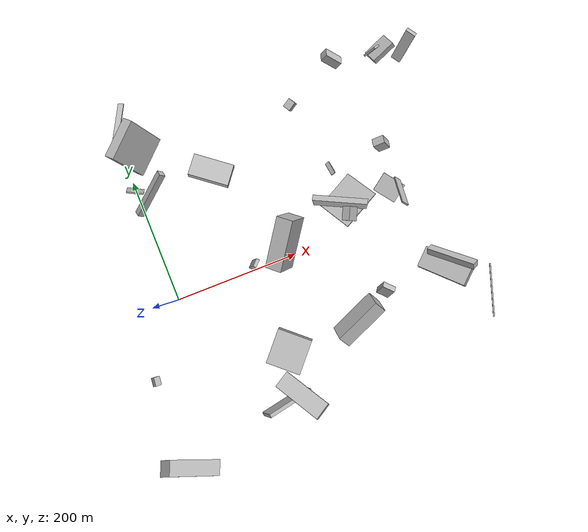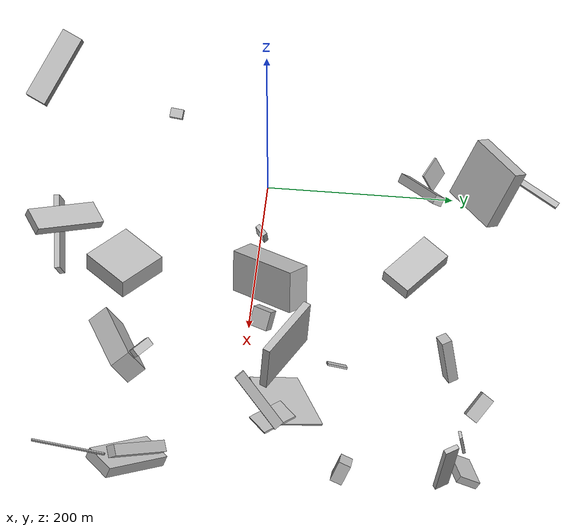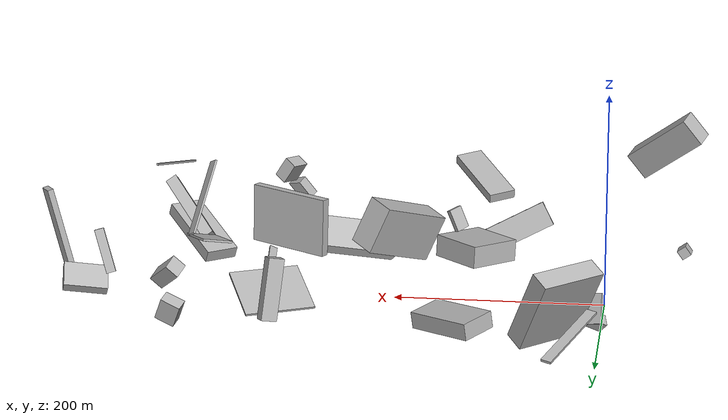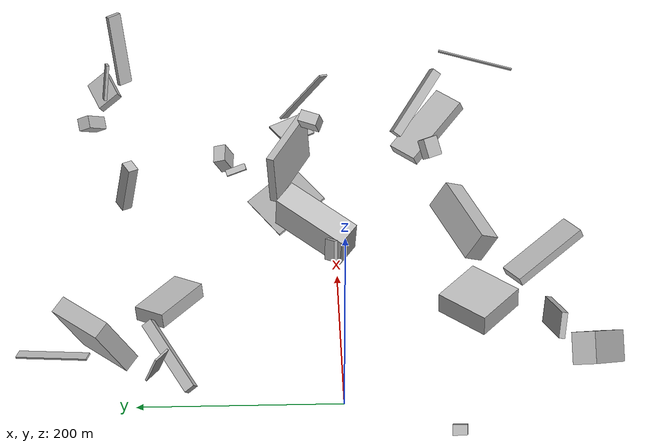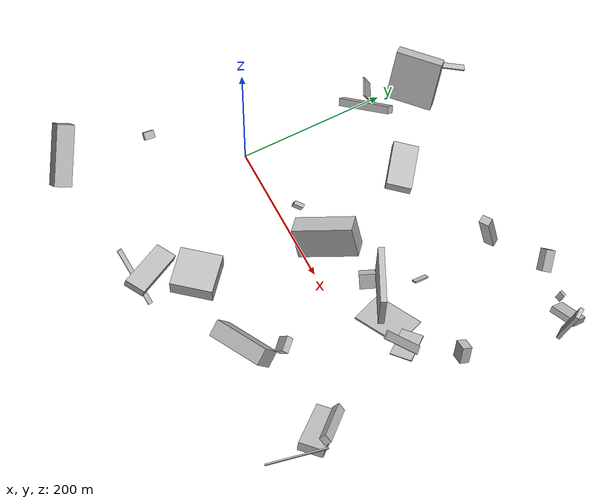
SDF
<sdf version="1.6">
 <world name="default">
  <scene>
   <sky><clouds><speed>12</speed></clouds></sky>
   <ambient>0.4 0.4 0.4 1</ambient>
   <background>0.7 0.7 0.7 1</background>
   <shadows>1</shadows>
  </scene>
  <gravity>0 0 -9.8066</gravity>
  <magnetic_field>6e-06 2.3e-05 -4.2e-05</magnetic_field>
  <physics default="0" name="default_physics" type="ode">
   <ode>
    <solver>
     <type>quick</type>
     <iters>10</iters>
     <sor>1.0</sor>
     <use_dynamic_moi_rescaling>0</use_dynamic_moi_rescaling>
    </solver>
    <constraints>
     <cfm>0</cfm>
     <erp>0.2</erp>
     <contact_max_correcting_vel>100</contact_max_correcting_vel>
     <contact_surface_layer>0.001</contact_surface_layer>
    </constraints>
   </ode>
   <max_step_size>0.004</max_step_size>
   <real_time_factor>1</real_time_factor>
   <real_time_update_rate>250</real_time_update_rate>
  </physics>
  <light name="sun" type="directional">
   <pose>0 0 10 0 0 0</pose>
   <diffuse>0.8 0.8 0.8 1</diffuse>
   <specular>0.2 0.2 0.2 1</specular>
   <attenuation>
    <range>1000</range>
    <constant>0.9</constant>
    <linear>0.01</linear>
    <quadratic>0.001</quadratic>
   </attenuation>
   <direction>-0.5 0.1 -0.9</direction>
  </light>
  <model name="building_1">
   <static>0</static>
   <pose>135.55247538067633 182.16266218073974 27.23504736665194 -1.413875425937808 -0.030752626919098792 2.4911080885580867</pose>
   <link name="link">
    <gravity>0</gravity>
    <pose>0 0 17.0 0 0 0</pose>
    <collision name="collision"><geometry><box><size>64 15 34</size></box></geometry></collision>
    <visual name="visual">
     <cast_shadows>0</cast_shadows>
     <geometry><box><size>64 15 34</size></box></geometry>
     <material>
      <script>
       <uri>model://HANNAS_wall/materials/scripts</uri>
       <uri>model://HANNAS_wall/materials/textures</uri>
       <name>vrc/HANNAS_wall</name>
      </script>
     </material>
    </visual>
   </link>
  </model>
  <model name="building_2">
   <static>0</static>
   <pose>417.3206782298035 234.34963884759352 116.57885181795316 2.8890911112400883 0.15504624671511846 -1.3571418871396956</pose>
   <link name="link">
    <gravity>0</gravity>
    <pose>0 0 19.0 0 0 0</pose>
    <collision name="collision"><geometry><box><size>3 8 38</size></box></geometry></collision>
    <visual name="visual">
     <cast_shadows>0</cast_shadows>
     <geometry><box><size>3 8 38</size></box></geometry>
     <material>
      <script>
       <uri>model://HANNAS_wall/materials/scripts</uri>
       <uri>model://HANNAS_wall/materials/textures</uri>
       <name>vrc/HANNAS_wall</name>
      </script>
     </material>
    </visual>
   </link>
  </model>
  <model name="building_3">
   <static>0</static>
   <pose>399.1952571956361 -113.93930115027189 34.31838242623493 1.5807053446503765 -1.1029079761141294 2.327450896427146</pose>
   <link name="link">
    <gravity>0</gravity>
    <pose>0 0 17.0 0 0 0</pose>
    <collision name="collision"><geometry><box><size>12 80 34</size></box></geometry></collision>
    <visual name="visual">
     <cast_shadows>0</cast_shadows>
     <geometry><box><size>12 80 34</size></box></geometry>
     <material>
      <script>
       <uri>model://HANNAS_wall/materials/scripts</uri>
       <uri>model://HANNAS_wall/materials/textures</uri>
       <name>vrc/HANNAS_wall</name>
      </script>
     </material>
    </visual>
   </link>
  </model>
  <model name="building_4">
   <static>0</static>
   <pose>426.76839377210604 248.62821899894772 67.37922423098325 -0.9230034485197152 0.1584683226634219 -2.773578711807585</pose>
   <link name="link">
    <gravity>0</gravity>
    <pose>0 0 12.5 0 0 0</pose>
    <collision name="collision"><geometry><box><size>37 8 25</size></box></geometry></collision>
    <visual name="visual">
     <cast_shadows>0</cast_shadows>
     <geometry><box><size>37 8 25</size></box></geometry>
     <material>
      <script>
       <uri>model://HANNAS_wall/materials/scripts</uri>
       <uri>model://HANNAS_wall/materials/textures</uri>
       <name>vrc/HANNAS_wall</name>
      </script>
     </material>
    </visual>
   </link>
  </model>
  <model name="building_5">
   <static>0</static>
   <pose>26.85449785430404 162.99058706665744 45.58177077717061 -2.2914903298017815 -0.4457724135303086 0.6039635811657154</pose>
   <link name="link">
    <gravity>0</gravity>
    <pose>0 0 5.5 0 0 0</pose>
    <collision name="collision"><geometry><box><size>80 10 11</size></box></geometry></collision>
    <visual name="visual">
     <cast_shadows>0</cast_shadows>
     <geometry><box><size>80 10 11</size></box></geometry>
     <material>
      <script>
       <uri>model://HANNAS_wall/materials/scripts</uri>
       <uri>model://HANNAS_wall/materials/textures</uri>
       <name>vrc/HANNAS_wall</name>
      </script>
     </material>
    </visual>
   </link>
  </model>
  <model name="building_6">
   <static>0</static>
   <pose>308.72631696116383 50.11380828823086 17.385270371771917 -3.128426295153972 0.4601942969114386 2.0728154377085497</pose>
   <link name="link">
    <gravity>0</gravity>
    <pose>0 0 1.0 0 0 0</pose>
    <collision name="collision"><geometry><box><size>60 67 2</size></box></geometry></collision>
    <visual name="visual">
     <cast_shadows>0</cast_shadows>
     <geometry><box><size>60 67 2</size></box></geometry>
     <material>
      <script>
       <uri>model://HANNAS_wall/materials/scripts</uri>
       <uri>model://HANNAS_wall/materials/textures</uri>
       <name>vrc/HANNAS_wall</name>
      </script>
     </material>
    </visual>
   </link>
  </model>
  <model name="building_7">
   <static>0</static>
   <pose>42.66921646292065 224.39131230139478 36.84642269330446 -0.5313138820085859 0.042426259865302116 0.7641315012576924</pose>
   <link name="link">
    <gravity>0</gravity>
    <pose>0 0 34.5 0 0 0</pose>
    <collision name="collision"><geometry><box><size>62 18 69</size></box></geometry></collision>
    <visual name="visual">
     <cast_shadows>0</cast_shadows>
     <geometry><box><size>62 18 69</size></box></geometry>
     <material>
      <script>
       <uri>model://HANNAS_wall/materials/scripts</uri>
       <uri>model://HANNAS_wall/materials/textures</uri>
       <name>vrc/HANNAS_wall</name>
      </script>
     </material>
    </visual>
   </link>
  </model>
  <model name="building_8">
   <static>0</static>
   <pose>288.7024128459424 43.83655007321169 85.03273438157635 1.6111679536185683 0.06809447400864882 2.6886353182573552</pose>
   <link name="link">
    <gravity>0</gravity>
    <pose>0 0 4.0 0 0 0</pose>
    <collision name="collision"><geometry><box><size>80 54 8</size></box></geometry></collision>
    <visual name="visual">
     <cast_shadows>0</cast_shadows>
     <geometry><box><size>80 54 8</size></box></geometry>
     <material>
      <script>
       <uri>model://HANNAS_wall/materials/scripts</uri>
       <uri>model://HANNAS_wall/materials/textures</uri>
       <name>vrc/HANNAS_wall</name>
      </script>
     </material>
    </visual>
   </link>
  </model>
  <model name="building_9">
   <static>0</static>
   <pose>154.6845627405021 -231.59892616340832 91.56362553070105 2.813042510878653 1.1945552876870789 -1.3339794849380693</pose>
   <link name="link">
    <gravity>0</gravity>
    <pose>0 0 40.0 0 0 0</pose>
    <collision name="collision"><geometry><box><size>9 28 80</size></box></geometry></collision>
    <visual name="visual">
     <cast_shadows>0</cast_shadows>
     <geometry><box><size>9 28 80</size></box></geometry>
     <material>
      <script>
       <uri>model://HANNAS_wall/materials/scripts</uri>
       <uri>model://HANNAS_wall/materials/textures</uri>
       <name>vrc/HANNAS_wall</name>
      </script>
     </material>
    </visual>
   </link>
  </model>
  <model name="building_10">
   <static>0</static>
   <pose>288.00641066064594 26.808873216240457 135.9140241318054 2.52089249563116 -0.055230716604395345 1.1378828997385628</pose>
   <link name="link">
    <gravity>0</gravity>
    <pose>0 0 10.0 0 0 0</pose>
    <collision name="collision"><geometry><box><size>20 12 20</size></box></geometry></collision>
    <visual name="visual">
     <cast_shadows>0</cast_shadows>
     <geometry><box><size>20 12 20</size></box></geometry>
     <material>
      <script>
       <uri>model://HANNAS_wall/materials/scripts</uri>
       <uri>model://HANNAS_wall/materials/textures</uri>
       <name>vrc/HANNAS_wall</name>
      </script>
     </material>
    </visual>
   </link>
  </model>
  <model name="building_11">
   <static>0</static>
   <pose>157.6385129019549 -157.0195034113113 17.892859966479662 1.6210511301964687 0.024000594081327247 -2.2850942136860337</pose>
   <link name="link">
    <gravity>0</gravity>
    <pose>0 0 28.0 0 0 0</pose>
    <collision name="collision"><geometry><box><size>57 22 56</size></box></geometry></collision>
    <visual name="visual">
     <cast_shadows>0</cast_shadows>
     <geometry><box><size>57 22 56</size></box></geometry>
     <material>
      <script>
       <uri>model://HANNAS_wall/materials/scripts</uri>
       <uri>model://HANNAS_wall/materials/textures</uri>
       <name>vrc/HANNAS_wall</name>
      </script>
     </material>
    </visual>
   </link>
  </model>
  <model name="building_12">
   <static>0</static>
   <pose>1.3449657699956852 243.74861411311807 63.387048545361694 -1.858335757518116 -0.13042406716599067 -0.3980105532209978</pose>
   <link name="link">
    <gravity>0</gravity>
    <pose>0 0 40.0 0 0 0</pose>
    <collision name="collision"><geometry><box><size>9 2 80</size></box></geometry></collision>
    <visual name="visual">
     <cast_shadows>0</cast_shadows>
     <geometry><box><size>9 2 80</size></box></geometry>
     <material>
      <script>
       <uri>model://HANNAS_wall/materials/scripts</uri>
       <uri>model://HANNAS_wall/materials/textures</uri>
       <name>vrc/HANNAS_wall</name>
      </script>
     </material>
    </visual>
   </link>
  </model>
  <model name="building_13">
   <static>0</static>
   <pose>312.1635624657544 -95.68794033385063 90.63170984767169 -2.527066697679238 -0.21627775790911977 2.331075172824988</pose>
   <link name="link">
    <gravity>0</gravity>
    <pose>0 0 10.0 0 0 0</pose>
    <collision name="collision"><geometry><box><size>20 9 20</size></box></geometry></collision>
    <visual name="visual">
     <cast_shadows>0</cast_shadows>
     <geometry><box><size>20 9 20</size></box></geometry>
     <material>
      <script>
       <uri>model://HANNAS_wall/materials/scripts</uri>
       <uri>model://HANNAS_wall/materials/textures</uri>
       <name>vrc/HANNAS_wall</name>
      </script>
     </material>
    </visual>
   </link>
  </model>
  <model name="building_14">
   <static>0</static>
   <pose>170.15640112204665 -9.756083333319609 62.27129466451985 0.8630650407533662 -1.146740537805933 -3.0845143101985304</pose>
   <link name="link">
    <gravity>0</gravity>
    <pose>0 0 40.0 0 0 0</pose>
    <collision name="collision"><geometry><box><size>45 26 80</size></box></geometry></collision>
    <visual name="visual">
     <cast_shadows>0</cast_shadows>
     <geometry><box><size>45 26 80</size></box></geometry>
     <material>
      <script>
       <uri>model://HANNAS_wall/materials/scripts</uri>
       <uri>model://HANNAS_wall/materials/textures</uri>
       <name>vrc/HANNAS_wall</name>
      </script>
     </material>
    </visual>
   </link>
  </model>
  <model name="building_15">
   <static>0</static>
   <pose>384.314211569365 50.17922750182272 68.42260044820536 -0.3908628426417075 0.4806698929980192 -2.6002237472903333</pose>
   <link name="link">
    <gravity>0</gravity>
    <pose>0 0 37.5 0 0 0</pose>
    <collision name="collision"><geometry><box><size>2 11 75</size></box></geometry></collision>
    <visual name="visual">
     <cast_shadows>0</cast_shadows>
     <geometry><box><size>2 11 75</size></box></geometry>
     <material>
      <script>
       <uri>model://HANNAS_wall/materials/scripts</uri>
       <uri>model://HANNAS_wall/materials/textures</uri>
       <name>vrc/HANNAS_wall</name>
      </script>
     </material>
    </visual>
   </link>
  </model>
  <model name="building_16">
   <static>0</static>
   <pose>363.65918735476873 241.69775336543023 78.10843031473476 -0.780806525388757 -0.7547505199380906 0.24520032532634092</pose>
   <link name="link">
    <gravity>0</gravity>
    <pose>0 0 14.0 0 0 0</pose>
    <collision name="collision"><geometry><box><size>13 14 28</size></box></geometry></collision>
    <visual name="visual">
     <cast_shadows>0</cast_shadows>
     <geometry><box><size>13 14 28</size></box></geometry>
     <material>
      <script>
       <uri>model://HANNAS_wall/materials/scripts</uri>
       <uri>model://HANNAS_wall/materials/textures</uri>
       <name>vrc/HANNAS_wall</name>
      </script>
     </material>
    </visual>
   </link>
  </model>
  <model name="building_17">
   <static>0</static>
   <pose>134.01087506471475 3.8051554232369598 82.8823482256011 -1.85064398407122 0.2767448323481257 -0.8686650238857554</pose>
   <link name="link">
    <gravity>0</gravity>
    <pose>0 0 6.5 0 0 0</pose>
    <collision name="collision"><geometry><box><size>5 21 13</size></box></geometry></collision>
    <visual name="visual">
     <cast_shadows>0</cast_shadows>
     <geometry><box><size>5 21 13</size></box></geometry>
     <material>
      <script>
       <uri>model://HANNAS_wall/materials/scripts</uri>
       <uri>model://HANNAS_wall/materials/textures</uri>
       <name>vrc/HANNAS_wall</name>
      </script>
     </material>
    </visual>
   </link>
  </model>
  <model name="building_18">
   <static>0</static>
   <pose>396.79454069689126 -67.87329952220887 36.5673489629978 0.7528109109656872 -0.6476797109083716 1.3947549151534533</pose>
   <link name="link">
    <gravity>0</gravity>
    <pose>0 0 40.0 0 0 0</pose>
    <collision name="collision"><geometry><box><size>10 12 80</size></box></geometry></collision>
    <visual name="visual">
     <cast_shadows>0</cast_shadows>
     <geometry><box><size>10 12 80</size></box></geometry>
     <material>
      <script>
       <uri>model://HANNAS_wall/materials/scripts</uri>
       <uri>model://HANNAS_wall/materials/textures</uri>
       <name>vrc/HANNAS_wall</name>
      </script>
     </material>
    </visual>
   </link>
  </model>
  <model name="building_19">
   <static>0</static>
   <pose>398.94012766867377 114.05271865799563 17.151544951412433 -2.030795836296216 0.3325613309600462 1.3705029154673538</pose>
   <link name="link">
    <gravity>0</gravity>
    <pose>0 0 9.5 0 0 0</pose>
    <collision name="collision"><geometry><box><size>13 23 19</size></box></geometry></collision>
    <visual name="visual">
     <cast_shadows>0</cast_shadows>
     <geometry><box><size>13 23 19</size></box></geometry>
     <material>
      <script>
       <uri>model://HANNAS_wall/materials/scripts</uri>
       <uri>model://HANNAS_wall/materials/textures</uri>
       <name>vrc/HANNAS_wall</name>
      </script>
     </material>
    </visual>
   </link>
  </model>
  <model name="building_20">
   <static>0</static>
   <pose>-24.652325364197218 -251.63224924206804 86.28053653534965 0.950015640069157 -0.29649874399898396 -1.9119327256664636</pose>
   <link name="link">
    <gravity>0</gravity>
    <pose>0 0 40.0 0 0 0</pose>
    <collision name="collision"><geometry><box><size>23 30 80</size></box></geometry></collision>
    <visual name="visual">
     <cast_shadows>0</cast_shadows>
     <geometry><box><size>23 30 80</size></box></geometry>
     <material>
      <script>
       <uri>model://HANNAS_wall/materials/scripts</uri>
       <uri>model://HANNAS_wall/materials/textures</uri>
       <name>vrc/HANNAS_wall</name>
      </script>
     </material>
    </visual>
   </link>
  </model>
  <model name="building_21">
   <static>0</static>
   <pose>257.68895966012644 -139.7391946056655 38.26890573822976 2.930946415862315 -0.5107922972938801 2.103070397754366</pose>
   <link name="link">
    <gravity>0</gravity>
    <pose>0 0 16.0 0 0 0</pose>
    <collision name="collision"><geometry><box><size>23 80 32</size></box></geometry></collision>
    <visual name="visual">
     <cast_shadows>0</cast_shadows>
     <geometry><box><size>23 80 32</size></box></geometry>
     <material>
      <script>
       <uri>model://HANNAS_wall/materials/scripts</uri>
       <uri>model://HANNAS_wall/materials/textures</uri>
       <name>vrc/HANNAS_wall</name>
      </script>
     </material>
    </visual>
   </link>
  </model>
  <model name="building_22">
   <static>0</static>
   <pose>280.98172151423387 216.05771422112855 64.84492854325057 -2.7343125601415847 1.3760380859132855 0.9503038612609904</pose>
   <link name="link">
    <gravity>0</gravity>
    <pose>0 0 7.0 0 0 0</pose>
    <collision name="collision"><geometry><box><size>54 11 14</size></box></geometry></collision>
    <visual name="visual">
     <cast_shadows>0</cast_shadows>
     <geometry><box><size>54 11 14</size></box></geometry>
     <material>
      <script>
       <uri>model://HANNAS_wall/materials/scripts</uri>
       <uri>model://HANNAS_wall/materials/textures</uri>
       <name>vrc/HANNAS_wall</name>
      </script>
     </material>
    </visual>
   </link>
  </model>
  <model name="building_23">
   <static>0</static>
   <pose>7.389277779478874 179.8863967915325 47.28909457694653 2.590379158958003 -1.1795615056872062 -1.513703003261696</pose>
   <link name="link">
    <gravity>0</gravity>
    <pose>0 0 1.0 0 0 0</pose>
    <collision name="collision"><geometry><box><size>26 26 2</size></box></geometry></collision>
    <visual name="visual">
     <cast_shadows>0</cast_shadows>
     <geometry><box><size>26 26 2</size></box></geometry>
     <material>
      <script>
       <uri>model://HANNAS_wall/materials/scripts</uri>
       <uri>model://HANNAS_wall/materials/textures</uri>
       <name>vrc/HANNAS_wall</name>
      </script>
     </material>
    </visual>
   </link>
  </model>
  <model name="building_24">
   <static>0</static>
   <pose>460.81817402682975 -116.1285683885607 98.18553839514891 -2.3638571177475964 -1.3710385803846266 -2.6153816834220973</pose>
   <link name="link">
    <gravity>0</gravity>
    <pose>0 0 40.0 0 0 0</pose>
    <collision name="collision"><geometry><box><size>2 2 80</size></box></geometry></collision>
    <visual name="visual">
     <cast_shadows>0</cast_shadows>
     <geometry><box><size>2 2 80</size></box></geometry>
     <material>
      <script>
       <uri>model://HANNAS_wall/materials/scripts</uri>
       <uri>model://HANNAS_wall/materials/textures</uri>
       <name>vrc/HANNAS_wall</name>
      </script>
     </material>
    </visual>
   </link>
  </model>
  <model name="building_25">
   <static>0</static>
   <pose>453.0499461766552 221.56163805839344 111.55608709600008 3.1073353121043956 1.3349145892161758 -2.56366516995342</pose>
   <link name="link">
    <gravity>0</gravity>
    <pose>0 0 2.5 0 0 0</pose>
    <collision name="collision"><geometry><box><size>78 15 5</size></box></geometry></collision>
    <visual name="visual">
     <cast_shadows>0</cast_shadows>
     <geometry><box><size>78 15 5</size></box></geometry>
     <material>
      <script>
       <uri>model://HANNAS_wall/materials/scripts</uri>
       <uri>model://HANNAS_wall/materials/textures</uri>
       <name>vrc/HANNAS_wall</name>
      </script>
     </material>
    </visual>
   </link>
  </model>
  <model name="building_26">
   <static>0</static>
   <pose>-74.3918308004049 -113.48356044416761 28.507657414720935 1.6511610392118756 -0.6223992461375613 2.995141734101145</pose>
   <link name="link">
    <gravity>0</gravity>
    <pose>0 0 7.0 0 0 0</pose>
    <collision name="collision"><geometry><box><size>10 10 14</size></box></geometry></collision>
    <visual name="visual">
     <cast_shadows>0</cast_shadows>
     <geometry><box><size>10 10 14</size></box></geometry>
     <material>
      <script>
       <uri>model://HANNAS_wall/materials/scripts</uri>
       <uri>model://HANNAS_wall/materials/textures</uri>
       <name>vrc/HANNAS_wall</name>
      </script>
     </material>
    </visual>
   </link>
  </model>
  <model name="building_27">
   <static>0</static>
   <pose>369.4123210182322 42.344422305404365 62.115857605918556 -0.05478018696092439 0.1925191877827379 -2.4950386159366373</pose>
   <link name="link">
    <gravity>0</gravity>
    <pose>0 0 1.0 0 0 0</pose>
    <collision name="collision"><geometry><box><size>30 37 2</size></box></geometry></collision>
    <visual name="visual">
     <cast_shadows>0</cast_shadows>
     <geometry><box><size>30 37 2</size></box></geometry>
     <material>
      <script>
       <uri>model://HANNAS_wall/materials/scripts</uri>
       <uri>model://HANNAS_wall/materials/textures</uri>
       <name>vrc/HANNAS_wall</name>
      </script>
     </material>
    </visual>
   </link>
  </model>
  <model name="building_28">
   <static>0</static>
   <pose>110.41901839991915 -213.74913971740912 29.99707355201847 2.9621439638637197 -0.4653551468601229 -3.020493179666565</pose>
   <link name="link">
    <gravity>0</gravity>
    <pose>0 0 13.0 0 0 0</pose>
    <collision name="collision"><geometry><box><size>80 6 26</size></box></geometry></collision>
    <visual name="visual">
     <cast_shadows>0</cast_shadows>
     <geometry><box><size>80 6 26</size></box></geometry>
     <material>
      <script>
       <uri>model://HANNAS_wall/materials/scripts</uri>
       <uri>model://HANNAS_wall/materials/textures</uri>
       <name>vrc/HANNAS_wall</name>
      </script>
     </material>
    </visual>
   </link>
  </model>
  <model name="building_29">
   <static>0</static>
   <pose>293.6645170527417 100.24601869168131 63.78265734967691 0.6393574355491728 -0.9945500441599118 2.6985215173294237</pose>
   <link name="link">
    <gravity>0</gravity>
    <pose>0 0 3.5 0 0 0</pose>
    <collision name="collision"><geometry><box><size>2 21 7</size></box></geometry></collision>
    <visual name="visual">
     <cast_shadows>0</cast_shadows>
     <geometry><box><size>2 21 7</size></box></geometry>
     <material>
      <script>
       <uri>model://HANNAS_wall/materials/scripts</uri>
       <uri>model://HANNAS_wall/materials/textures</uri>
       <name>vrc/HANNAS_wall</name>
      </script>
     </material>
    </visual>
   </link>
  </model>
 </world>
</sdf>
